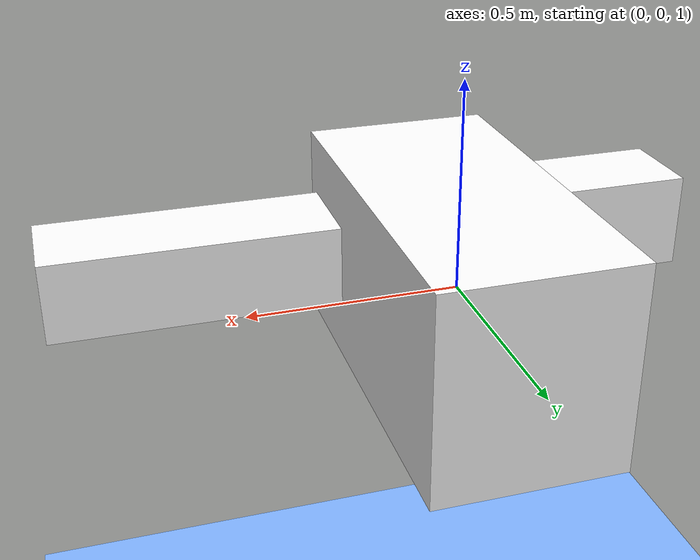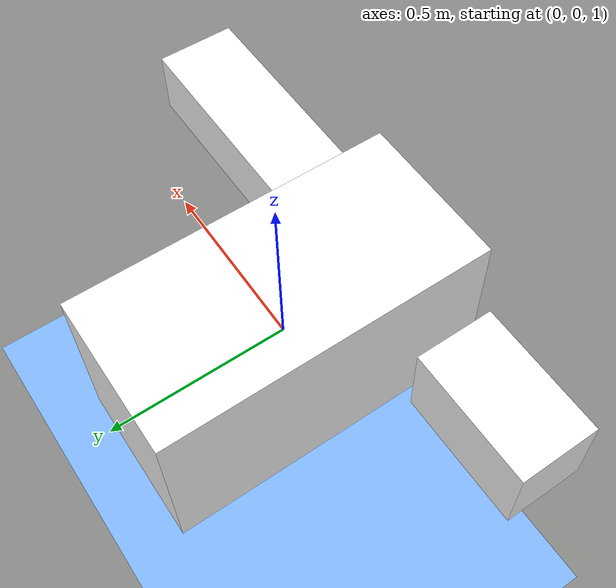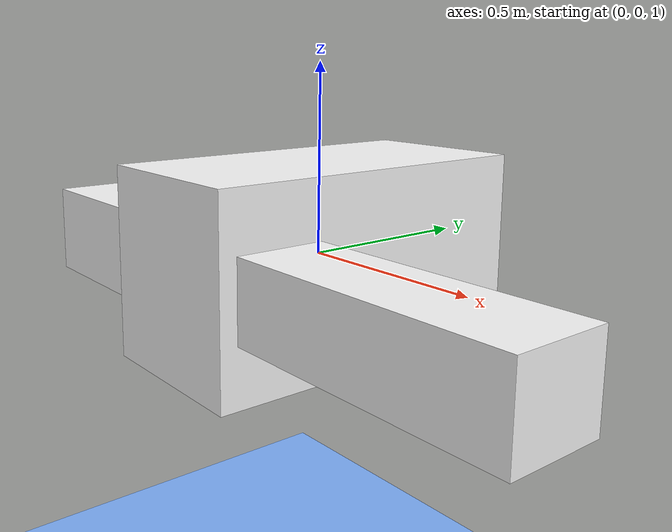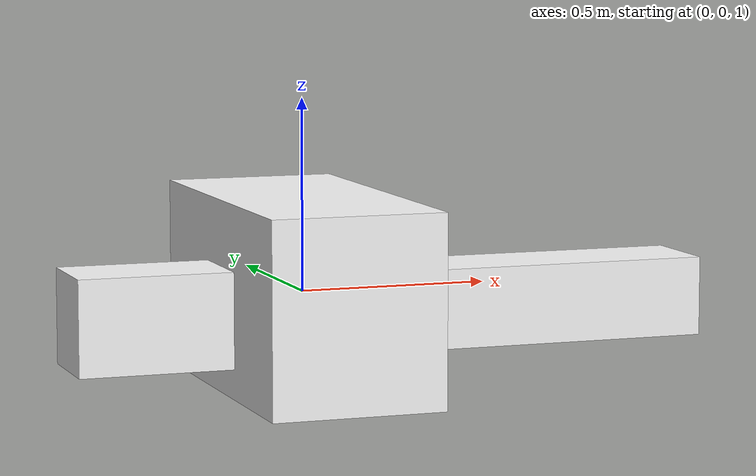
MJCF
<mujoco>
    <worldbody>
        <light diffuse=".5 .5 .5" pos="0 0 2" dir="0 -1 0" />
        <geom type="plane" size="10 10 0.1" rgba="0.5 0.7 1 1" />

        <body name="flappybird" pos="0 0 1" euler="0 0 0">
            <joint type="free" axis="0 0 0" pos="0 0 0" />
            <body name="body" pos="0 0 0" euler="0 0 0">
                <geom type="box" size="0.22651549605705196 0.46249786448658237 0.24868145520695936" rgba="1 1 1 1" mass="0.01" />
            </body>

            <body name="wing1" pos=".5 -.3 0" euler="0 -90 0">
                <joint name="joint1" type="hinge" axis="0 1 0" pos="0 0 .25" range="-45 45" />
                <geom type="box" size="0.1 0.11712756040897282 0.43166276280655186" rgba="1 1 1 1" mass="0.5472251009282674" />
            </body>

            <body name="wing2" pos="-.5 -.3 0" euler="0 90 0">
                <joint name="joint2" type="hinge" axis="0 1 0" pos="0 0 .25" range="-45 45" />
                <geom type="box" size="0.1193970832023838 0.11361829595636537 0.19251844662868828" rgba="1 1 1 1" mass="0.4046919392945555" />
            </body>

        </body>
    </worldbody>

    <actuator>
        <motor joint="joint1" name="m1" gear="13.418831386298612" ctrllimited="true" ctrlrange="-5 5" />
        <motor joint="joint2" name="m2" gear="14.09700469188804" ctrllimited="true" ctrlrange="-5 5" />

</actuator>

</mujoco>
